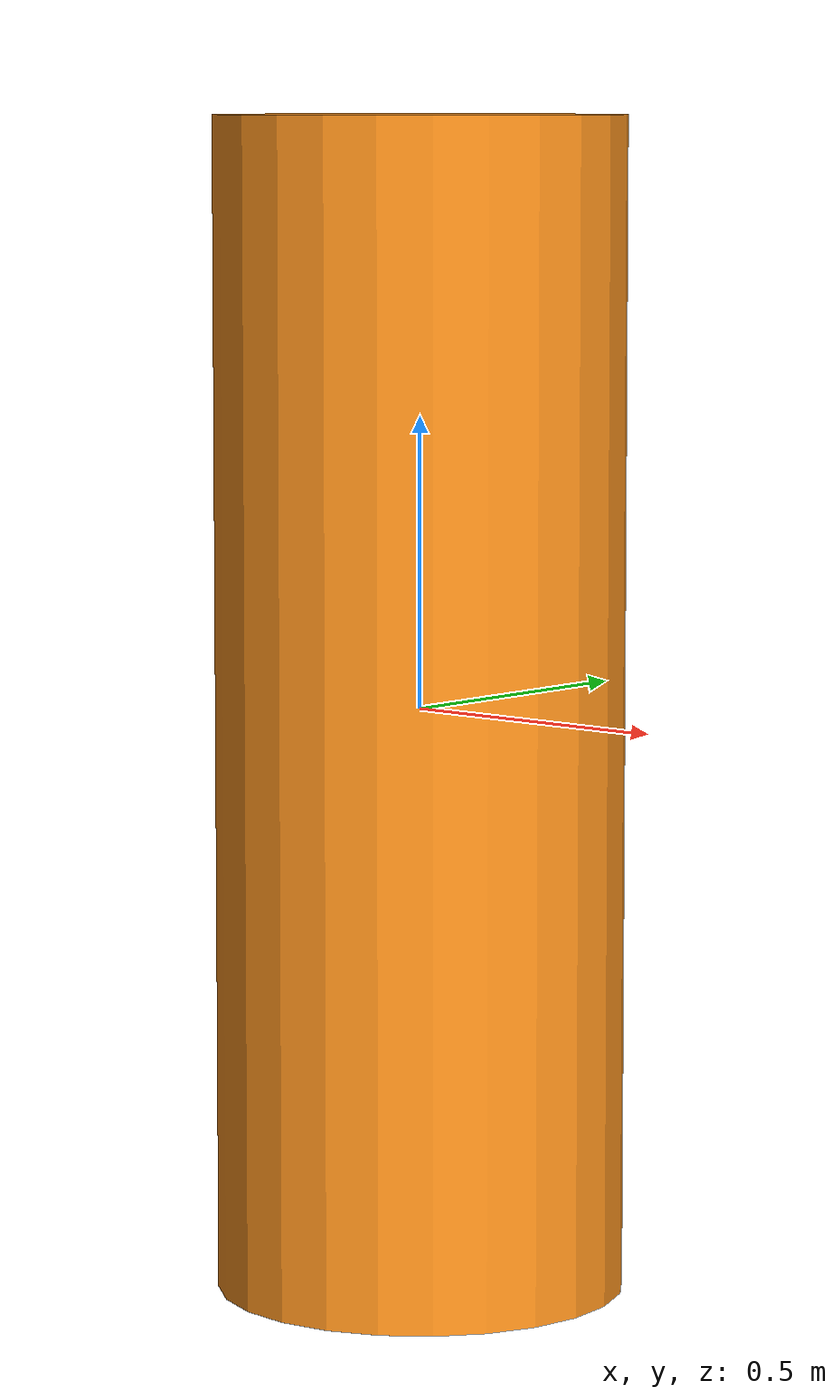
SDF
<?xml version='1.0'?>
<sdf version='1.11'>
  <model name='goal_marker'>
    <link name='link_0'>
      <pose relative_to=''>0 0 0 0 -0 0</pose>
      <inertial>
        <mass>100</mass>
        <inertia>
          <ixx>0.370796</ixx>
          <ixy>0</ixy>
          <ixz>0</ixz>
          <iyy>0.370796</iyy>
          <iyz>0</iyz>
          <izz>0.0617961</izz>
        </inertia>
      </inertial>
      <self_collide>0</self_collide>
      <kinematic>0</kinematic>
      <gravity>1</gravity>
      <visual name='visual'>
        <pose relative_to=''>0 0 0 0 -0 0</pose>
        <geometry>
          <cylinder>
            <radius>0.351651</radius>
            <length>2.02024</length>
          </cylinder>
        </geometry>
        <material>
          <lighting>1</lighting>
          <script>
            <uri>file://media/materials/scripts/gazebo.material</uri>
            <name>Gazebo/Orange</name>
          </script>
          <ambient>1 0.6 0 1</ambient>
          <diffuse>1 0.6 0 1</diffuse>
          <specular>1 0.61 0 1</specular>
          <emissive>0 0 0 1</emissive>
          <shader type='vertex'>
            <normal_map>__default__</normal_map>
          </shader>
        </material>
        <cast_shadows>1</cast_shadows>
        <transparency>0</transparency>
      </visual>
      <collision name='collision'>
        <laser_retro>0</laser_retro>
        <max_contacts>10</max_contacts>
        <pose relative_to=''>0 0 0 0 -0 0</pose>
        <geometry>
          <cylinder>
            <radius>0.351651</radius>
            <length>2.02024</length>
          </cylinder>
        </geometry>
        <surface>
          <friction>
            <ode>
              <mu>100</mu>
              <mu2>100</mu2>
              <fdir1>0 0 0</fdir1>
              <slip1>0</slip1>
              <slip2>0</slip2>
            </ode>
            <torsional>
              <coefficient>1</coefficient>
              <patch_radius>0</patch_radius>
              <surface_radius>0</surface_radius>
              <use_patch_radius>1</use_patch_radius>
              <ode>
                <slip>0</slip>
              </ode>
            </torsional>
          </friction>
          <bounce>
            <restitution_coefficient>1</restitution_coefficient>
            <threshold>1e+06</threshold>
          </bounce>
          <contact>
            <collide_without_contact>0</collide_without_contact>
            <collide_without_contact_bitmask>1</collide_without_contact_bitmask>
            <collide_bitmask>1</collide_bitmask>
            <ode>
              <soft_cfm>0</soft_cfm>
              <soft_erp>0.2</soft_erp>
              <kp>1e+13</kp>
              <kd>1</kd>
              <max_vel>0.01</max_vel>
              <min_depth>0</min_depth>
            </ode>
            <bullet>
              <split_impulse>1</split_impulse>
              <split_impulse_penetration_threshold>-0.01</split_impulse_penetration_threshold>
              <soft_cfm>0</soft_cfm>
              <soft_erp>0.2</soft_erp>
              <kp>1e+13</kp>
              <kd>1</kd>
            </bullet>
          </contact>
        </surface>
      </collision>
    </link>
    <static>0</static>
    <allow_auto_disable>1</allow_auto_disable>
  </model>
</sdf>
